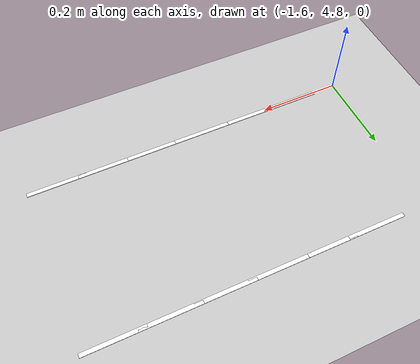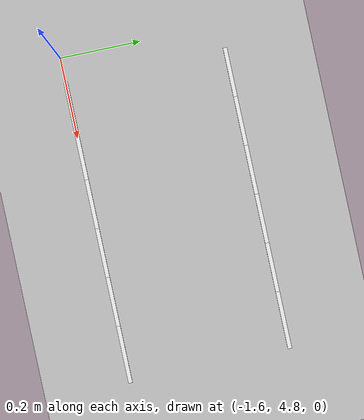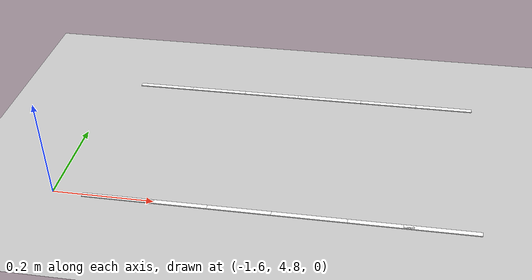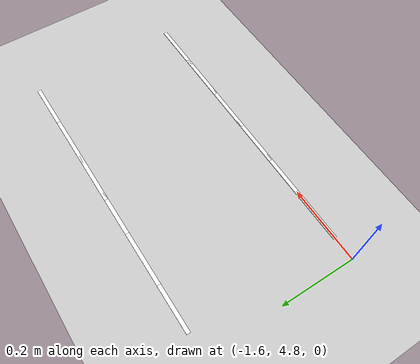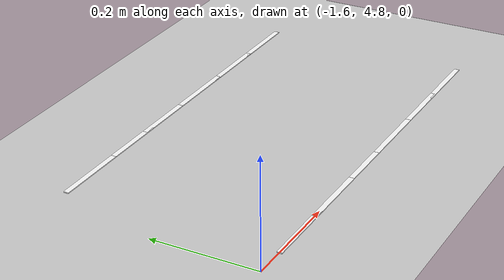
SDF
<sdf version="1.7">
 <world name="default">
  <model name="ground_plane">
   <static>1</static>
   <link name="link">
    <collision name="collision">
     <geometry><plane><normal>0 0 1</normal><size>100 100</size></plane></geometry>
     <surface>
      <contact><collide_bitmask>65535</collide_bitmask></contact>
      <friction><ode><mu>100</mu><mu2>50</mu2></ode></friction>
     </surface>
    </collision>
    <visual name="visual">
     <cast_shadows>0</cast_shadows>
     <geometry><plane><normal>0 0 1</normal><size>100 100</size></plane></geometry>
     <material>
      <script><uri>file://media/materials/scripts/gazebo.material</uri><name>Gazebo/Grey</name></script>
     </material>
    </visual>
   </link>
  </model>
  <model name="lane_line_left_231">
   <static>1</static>
   <link name="link">
    <pose>0 0 -0.004 0 -0 0</pose>
    <visual name="visual">
     <geometry><box><size>0.1424 0.01 0.01</size></box></geometry>
     <material><ambient>1 1 1 1</ambient><diffuse>1 1 1 1</diffuse></material>
    </visual>
    <collision name="collision"><geometry><box><size>0.1424 0.01 0.01</size></box></geometry></collision>
   </link>
   <pose>-0.857143 4.8 0 0 -0 3.14159</pose>
  </model>
  <model name="lane_line_right_231">
   <static>1</static>
   <link name="link">
    <pose>0 0 -0.004 0 -0 0</pose>
    <visual name="visual">
     <geometry><box><size>0.1424 0.01 0.01</size></box></geometry>
     <material><ambient>1 1 1 1</ambient><diffuse>1 1 1 1</diffuse></material>
    </visual>
    <collision name="collision"><geometry><box><size>0.1424 0.01 0.01</size></box></geometry></collision>
   </link>
   <pose>-0.857143 5.2 0 0 -0 3.14159</pose>
  </model>
  <model name="lane_line_left_232">
   <static>1</static>
   <link name="link">
    <pose>0 0 -0.004 0 -0 0</pose>
    <visual name="visual">
     <geometry><box><size>0.1424 0.01 0.01</size></box></geometry>
     <material><ambient>1 1 1 1</ambient><diffuse>1 1 1 1</diffuse></material>
    </visual>
    <collision name="collision"><geometry><box><size>0.1424 0.01 0.01</size></box></geometry></collision>
   </link>
   <pose>-0.979592 4.8 0 0 -0 3.14159</pose>
  </model>
  <model name="lane_line_right_232">
   <static>1</static>
   <link name="link">
    <pose>0 0 -0.004 0 -0 0</pose>
    <visual name="visual">
     <geometry><box><size>0.1424 0.01 0.01</size></box></geometry>
     <material><ambient>1 1 1 1</ambient><diffuse>1 1 1 1</diffuse></material>
    </visual>
    <collision name="collision"><geometry><box><size>0.1424 0.01 0.01</size></box></geometry></collision>
   </link>
   <pose>-0.979592 5.2 0 0 -0 3.14159</pose>
  </model>
  <model name="lane_line_left_233">
   <static>1</static>
   <link name="link">
    <pose>0 0 -0.004 0 -0 0</pose>
    <visual name="visual">
     <geometry><box><size>0.1424 0.01 0.01</size></box></geometry>
     <material><ambient>1 1 1 1</ambient><diffuse>1 1 1 1</diffuse></material>
    </visual>
    <collision name="collision"><geometry><box><size>0.1424 0.01 0.01</size></box></geometry></collision>
   </link>
   <pose>-1.10204 4.8 0 0 -0 3.14159</pose>
  </model>
  <model name="lane_line_right_233">
   <static>1</static>
   <link name="link">
    <pose>0 0 -0.004 0 -0 0</pose>
    <visual name="visual">
     <geometry><box><size>0.1424 0.01 0.01</size></box></geometry>
     <material><ambient>1 1 1 1</ambient><diffuse>1 1 1 1</diffuse></material>
    </visual>
    <collision name="collision"><geometry><box><size>0.1424 0.01 0.01</size></box></geometry></collision>
   </link>
   <pose>-1.10204 5.2 0 0 -0 3.14159</pose>
  </model>
  <model name="lane_line_left_234">
   <static>1</static>
   <link name="link">
    <pose>0 0 -0.004 0 -0 0</pose>
    <visual name="visual">
     <geometry><box><size>0.1424 0.01 0.01</size></box></geometry>
     <material><ambient>1 1 1 1</ambient><diffuse>1 1 1 1</diffuse></material>
    </visual>
    <collision name="collision"><geometry><box><size>0.1424 0.01 0.01</size></box></geometry></collision>
   </link>
   <pose>-1.22449 4.8 0 0 -0 3.14159</pose>
  </model>
  <model name="lane_line_right_234">
   <static>1</static>
   <link name="link">
    <pose>0 0 -0.004 0 -0 0</pose>
    <visual name="visual">
     <geometry><box><size>0.1424 0.01 0.01</size></box></geometry>
     <material><ambient>1 1 1 1</ambient><diffuse>1 1 1 1</diffuse></material>
    </visual>
    <collision name="collision"><geometry><box><size>0.1424 0.01 0.01</size></box></geometry></collision>
   </link>
   <pose>-1.22449 5.2 0 0 -0 3.14159</pose>
  </model>
  <model name="lane_line_left_235">
   <static>1</static>
   <link name="link">
    <pose>0 0 -0.004 0 -0 0</pose>
    <visual name="visual">
     <geometry><box><size>0.1424 0.01 0.01</size></box></geometry>
     <material><ambient>1 1 1 1</ambient><diffuse>1 1 1 1</diffuse></material>
    </visual>
    <collision name="collision"><geometry><box><size>0.1424 0.01 0.01</size></box></geometry></collision>
   </link>
   <pose>-1.34694 4.8 0 0 -0 3.14159</pose>
  </model>
  <model name="lane_line_right_235">
   <static>1</static>
   <link name="link">
    <pose>0 0 -0.004 0 -0 0</pose>
    <visual name="visual">
     <geometry><box><size>0.1424 0.01 0.01</size></box></geometry>
     <material><ambient>1 1 1 1</ambient><diffuse>1 1 1 1</diffuse></material>
    </visual>
    <collision name="collision"><geometry><box><size>0.1424 0.01 0.01</size></box></geometry></collision>
   </link>
   <pose>-1.34694 5.2 0 0 -0 3.14159</pose>
  </model>
  <model name="lane_line_left_236">
   <static>1</static>
   <link name="link">
    <pose>0 0 -0.004 0 -0 0</pose>
    <visual name="visual">
     <geometry><box><size>0.1424 0.01 0.01</size></box></geometry>
     <material><ambient>1 1 1 1</ambient><diffuse>1 1 1 1</diffuse></material>
    </visual>
    <collision name="collision"><geometry><box><size>0.1424 0.01 0.01</size></box></geometry></collision>
   </link>
   <pose>-1.46939 4.8 0 0 -0 3.14159</pose>
  </model>
  <model name="lane_line_right_236">
   <static>1</static>
   <link name="link">
    <pose>0 0 -0.004 0 -0 0</pose>
    <visual name="visual">
     <geometry><box><size>0.1424 0.01 0.01</size></box></geometry>
     <material><ambient>1 1 1 1</ambient><diffuse>1 1 1 1</diffuse></material>
    </visual>
    <collision name="collision"><geometry><box><size>0.1424 0.01 0.01</size></box></geometry></collision>
   </link>
   <pose>-1.46939 5.2 0 0 -0 3.14159</pose>
  </model>
 </world>
</sdf>
